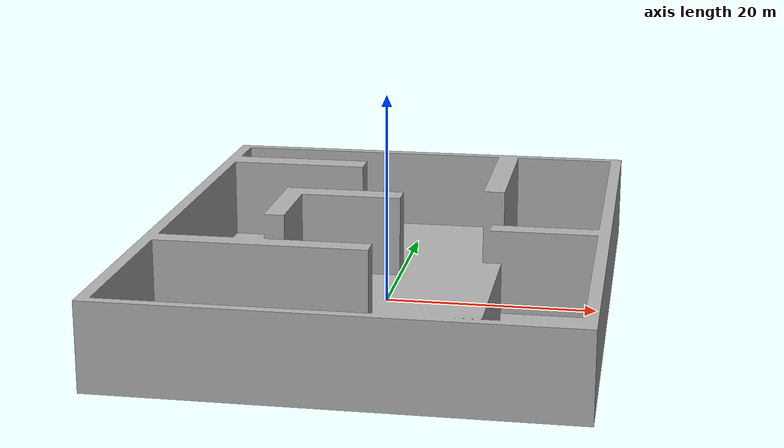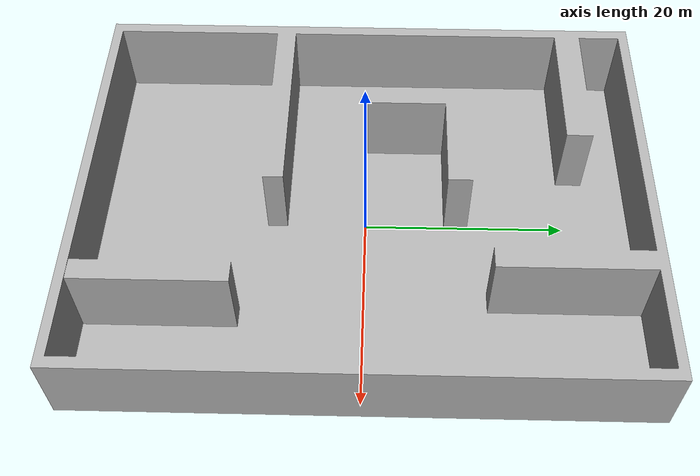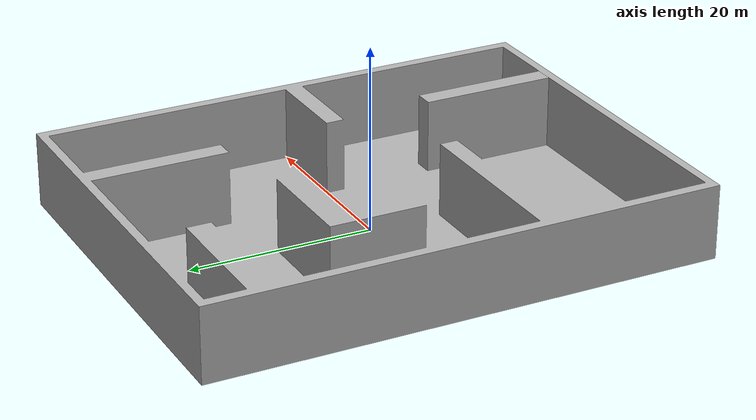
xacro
<?xml version="1.0" ?>
<robot name="world1" xmlns:xacro="http://www.ros.org/wiki/xacro">

<xacro:include filename="$(find world1_description)/urdf/materials.xacro" />
<xacro:include filename="$(find world1_description)/urdf/world1.trans" />
<xacro:include filename="$(find world1_description)/urdf/world1.gazebo" />
<link name="base_link">
  <inertial>
    <origin xyz="-0.7158242049697389 1.7658642148778938 3.8595155165127415" rpy="0 0 0"/>
    <mass value="1920850.7988732446"/>
    <inertia ixx="648179986.155538" iyy="429853857.325105" izz="1056163399.138581" ixy="45369203.055175" iyz="-476517.985726" ixz="193164.97011"/>
  </inertial>
  <visual>
    <origin xyz="0 0 0" rpy="0 0 0"/>
    <geometry>
      <mesh filename="file://$(find world1_description)/meshes/base_link.stl" scale="0.001 0.001 0.001"/>
    </geometry>
    <material name="silver"/>
  </visual>
  <collision>
    <origin xyz="0 0 0" rpy="0 0 0"/>
    <geometry>
      <mesh filename="file://$(find world1_description)/meshes/base_link.stl" scale="0.001 0.001 0.001"/>
    </geometry>
  </collision>
</link>

</robot>

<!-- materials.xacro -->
<robot name="world1" xmlns:xacro="http://www.ros.org/wiki/xacro" >

<material name="silver">
  <color rgba="0.700 0.700 0.700 1.000"/>
</material>

</robot>

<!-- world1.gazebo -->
<robot name="world1" xmlns:xacro="http://www.ros.org/wiki/xacro" >

<xacro:property name="body_color" value="Gazebo/Silver" />

<gazebo>
  <plugin name="control" filename="libgazebo_ros_control.so"/>
</gazebo>
<gazebo reference="base_link">
  <material>${body_color}</material>
  <mu1>0.2</mu1>
  <mu2>0.2</mu2>
  <self_collide>true</self_collide>
  <gravity>true</gravity>
</gazebo>

</robot>
